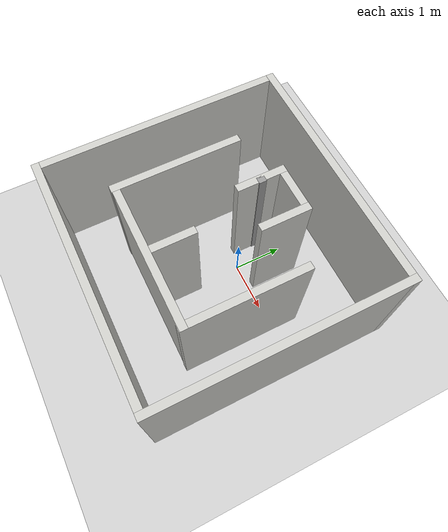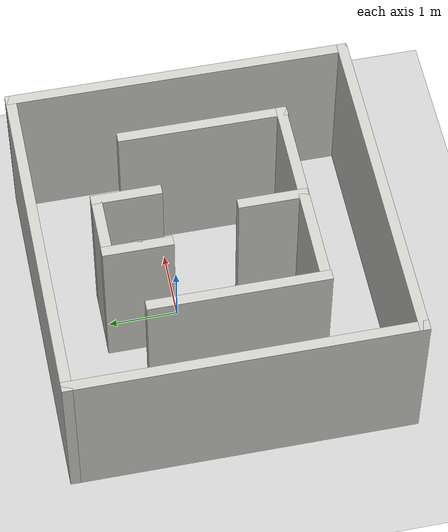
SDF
<sdf version="1.7">
 <world name="default">
  <light name="sun" type="directional">
   <pose>0 0 10 0 -0 0</pose>
   <diffuse>0.8 0.8 0.8 1</diffuse>
   <specular>0.2 0.2 0.2 1</specular>
   <attenuation>
    <range>1000</range>
    <constant>0.9</constant>
    <linear>0.01</linear>
    <quadratic>0.001</quadratic>
   </attenuation>
   <direction>-0.5 0.1 -0.9</direction>
   <spot><inner_angle>0</inner_angle><outer_angle>0</outer_angle><falloff>0</falloff></spot>
  </light>
  <model name="ground_plane">
   <static>1</static>
   <link name="link">
    <collision name="collision">
     <geometry><plane><normal>0 0 1</normal><size>100 100</size></plane></geometry>
     <surface>
      <contact><collide_bitmask>65535</collide_bitmask></contact>
      <friction><ode><mu>100</mu><mu2>50</mu2></ode></friction>
     </surface>
    </collision>
    <visual name="visual">
     <cast_shadows>0</cast_shadows>
     <geometry><plane><normal>0 0 1</normal><size>100 100</size></plane></geometry>
     <material>
      <script><uri>file://media/materials/scripts/gazebo.material</uri><name>Gazebo/Grey</name></script>
     </material>
    </visual>
   </link>
  </model>
  <gravity>0 0 -9.8</gravity>
  <magnetic_field>6e-06 2.3e-05 -4.2e-05</magnetic_field>
  <atmosphere type="adiabatic"/>
  <physics type="ode">
   <max_step_size>0.001</max_step_size>
   <real_time_factor>1</real_time_factor>
   <real_time_update_rate>1000</real_time_update_rate>
  </physics>
  <scene><ambient>0.4 0.4 0.4 1</ambient><background>0.7 0.7 0.7 1</background><shadows>1</shadows></scene>
  <spherical_coordinates>
   <surface_model>EARTH_WGS84</surface_model>
   <latitude_deg>0</latitude_deg>
   <longitude_deg>0</longitude_deg>
   <elevation>0</elevation>
   <heading_deg>0</heading_deg>
  </spherical_coordinates>
  <model name="Scots_demo">
   <pose>-0.007828 0.016217 0 0 -0 0</pose>
   <link name="Wall_0">
    <collision name="Wall_0_Collision">
     <geometry><box><size>5 0.15 2.5</size></box></geometry>
     <pose>0 0 1.25 0 -0 0</pose>
    </collision>
    <visual name="Wall_0_Visual">
     <pose>0 0 1.25 0 -0 0</pose>
     <geometry><box><size>5 0.15 2.5</size></box></geometry>
     <material>
      <script><uri>file://media/materials/scripts/gazebo.material</uri><name>Gazebo/CeilingTiled</name></script>
      <ambient>1 1 1 1</ambient>
     </material>
     <meta><layer>0</layer></meta>
    </visual>
    <pose>-0 1.9025 0 0 -0 0</pose>
   </link>
   <link name="Wall_14">
    <collision name="Wall_14_Collision">
     <geometry><box><size>2.5722 0.15 2.5</size></box></geometry>
     <pose>0 0 1.25 0 -0 0</pose>
    </collision>
    <visual name="Wall_14_Visual">
     <pose>0 0 1.25 0 -0 0</pose>
     <geometry><box><size>2.5722 0.15 2.5</size></box></geometry>
     <material>
      <script><uri>file://media/materials/scripts/gazebo.material</uri><name>Gazebo/CeilingTiled</name></script>
      <ambient>1 1 1 1</ambient>
     </material>
     <meta><layer>0</layer></meta>
    </visual>
    <pose>-1.38097 -0.639049 0 0 -0 -1.5708</pose>
   </link>
   <link name="Wall_16">
    <collision name="Wall_16_Collision">
     <geometry><box><size>3 0.15 2.5</size></box></geometry>
     <pose>0 0 1.25 0 -0 0</pose>
    </collision>
    <visual name="Wall_16_Visual">
     <pose>0 0 1.25 0 -0 0</pose>
     <geometry><box><size>3 0.15 2.5</size></box></geometry>
     <material>
      <script><uri>file://media/materials/scripts/gazebo.material</uri><name>Gazebo/CeilingTiled</name></script>
      <ambient>1 1 1 1</ambient>
     </material>
     <meta><layer>0</layer></meta>
    </visual>
    <pose>0.044031 -1.83878 0 0 -0 0</pose>
   </link>
   <link name="Wall_23">
    <collision name="Wall_23_Collision">
     <geometry><box><size>2.45452 0.15 2.5</size></box></geometry>
     <pose>0 0 1.25 0 -0 0</pose>
    </collision>
    <visual name="Wall_23_Visual">
     <pose>0 0 1.25 0 -0 0</pose>
     <geometry><box><size>2.45452 0.15 2.5</size></box></geometry>
     <material>
      <script><uri>file://media/materials/scripts/gazebo.material</uri><name>Gazebo/CeilingTiled</name></script>
      <ambient>1 1 1 1</ambient>
     </material>
     <meta><layer>0</layer></meta>
    </visual>
    <pose>1.46903 -0.697891 0 0 -0 1.5708</pose>
   </link>
   <link name="Wall_30">
    <collision name="Wall_30_Collision">
     <geometry><box><size>0.15 0.15 2.5</size></box></geometry>
     <pose>0 0 1.25 0 -0 0</pose>
    </collision>
    <visual name="Wall_30_Visual">
     <pose>0 0 1.25 0 -0 0</pose>
     <geometry><box><size>0.15 0.15 2.5</size></box></geometry>
     <material>
      <script><uri>file://media/materials/scripts/gazebo.material</uri><name>Gazebo/Grey</name></script>
      <ambient>1 1 1 1</ambient>
     </material>
     <meta><layer>0</layer></meta>
    </visual>
    <pose>-0.387133 0.575217 0 0 -0 0</pose>
   </link>
   <link name="Wall_34">
    <collision name="Wall_34_Collision">
     <geometry><box><size>1 0.15 2.5</size></box></geometry>
     <pose>0 0 1.25 0 -0 0</pose>
    </collision>
    <visual name="Wall_34_Visual">
     <pose>0 0 1.25 0 -0 0</pose>
     <geometry><box><size>1 0.15 2.5</size></box></geometry>
     <material>
      <script><uri>file://media/materials/scripts/gazebo.material</uri><name>Gazebo/CeilingTiled</name></script>
      <ambient>1 1 1 1</ambient>
     </material>
     <meta><layer>0</layer></meta>
    </visual>
    <pose>-0.4055 0.582961 0 0 -0 -1.5708</pose>
   </link>
   <link name="Wall_36">
    <collision name="Wall_36_Collision">
     <geometry><box><size>1 0.15 2.5</size></box></geometry>
     <pose>0 0 1.25 0 -0 0</pose>
    </collision>
    <visual name="Wall_36_Visual">
     <pose>0 0 1.25 0 -0 0</pose>
     <geometry><box><size>1 0.15 2.5</size></box></geometry>
     <material>
      <script><uri>file://media/materials/scripts/gazebo.material</uri><name>Gazebo/CeilingTiled</name></script>
      <ambient>1 1 1 1</ambient>
     </material>
     <meta><layer>0</layer></meta>
    </visual>
    <pose>0.472387 0.579821 0 0 -0 -1.5708</pose>
   </link>
   <link name="Wall_39">
    <collision name="Wall_39_Collision">
     <geometry><box><size>0.75 0.15 2.5</size></box></geometry>
     <pose>0 0 1.25 0 -0 0</pose>
    </collision>
    <visual name="Wall_39_Visual">
     <pose>0 0 1.25 0 -0 0</pose>
     <geometry><box><size>0.75 0.15 2.5</size></box></geometry>
     <material>
      <script><uri>file://media/materials/scripts/gazebo.material</uri><name>Gazebo/CeilingTiled</name></script>
      <ambient>1 1 1 1</ambient>
     </material>
     <meta><layer>0</layer></meta>
    </visual>
    <pose>0.043686 1.00482 0 0 -0 0</pose>
   </link>
   <link name="Wall_4">
    <collision name="Wall_4_Collision">
     <geometry><box><size>5 0.15 2.5</size></box></geometry>
     <pose>0 0 1.25 0 -0 0</pose>
    </collision>
    <visual name="Wall_4_Visual">
     <pose>0 0 1.25 0 -0 0</pose>
     <geometry><box><size>5 0.15 2.5</size></box></geometry>
     <material>
      <script><uri>file://media/materials/scripts/gazebo.material</uri><name>Gazebo/CeilingTiled</name></script>
      <ambient>1 1 1 1</ambient>
     </material>
     <meta><layer>0</layer></meta>
    </visual>
    <pose>-2.425 -0.5225 0 0 -0 -1.5708</pose>
   </link>
   <link name="Wall_43">
    <collision name="Wall_43_Collision">
     <geometry><box><size>1 0.15 2.5</size></box></geometry>
     <pose>0 0 1.25 0 -0 0</pose>
    </collision>
    <visual name="Wall_43_Visual">
     <pose>0 0 1.25 0 -0 0</pose>
     <geometry><box><size>1 0.15 2.5</size></box></geometry>
     <material>
      <script><uri>file://media/materials/scripts/gazebo.material</uri><name>Gazebo/CeilingTiled</name></script>
      <ambient>1 1 1 1</ambient>
     </material>
     <meta><layer>0</layer></meta>
    </visual>
    <pose>0.015516 -1.40405 0 0 -0 -1.5708</pose>
   </link>
   <link name="Wall_5">
    <collision name="Wall_5_Collision">
     <geometry><box><size>5 0.15 2.5</size></box></geometry>
     <pose>0 0 1.25 0 -0 0</pose>
    </collision>
    <visual name="Wall_5_Visual">
     <pose>0 0 1.25 0 -0 0</pose>
     <geometry><box><size>5 0.15 2.5</size></box></geometry>
     <material>
      <script><uri>file://media/materials/scripts/gazebo.material</uri><name>Gazebo/CeilingTiled</name></script>
      <ambient>1 1 1 1</ambient>
     </material>
     <meta><layer>0</layer></meta>
    </visual>
    <pose>-0 -2.9475 0 0 -0 0</pose>
   </link>
   <link name="Wall_6">
    <collision name="Wall_6_Collision">
     <geometry><box><size>5 0.15 2.5</size></box></geometry>
     <pose>0 0 1.25 0 -0 0</pose>
    </collision>
    <visual name="Wall_6_Visual">
     <pose>0 0 1.25 0 -0 0</pose>
     <geometry><box><size>5 0.15 2.5</size></box></geometry>
     <material>
      <script><uri>file://media/materials/scripts/gazebo.material</uri><name>Gazebo/CeilingTiled</name></script>
      <ambient>1 1 1 1</ambient>
     </material>
     <meta><layer>0</layer></meta>
    </visual>
    <pose>2.425 -0.5225 0 0 -0 1.5708</pose>
   </link>
   <static>1</static>
  </model>
 </world>
</sdf>
